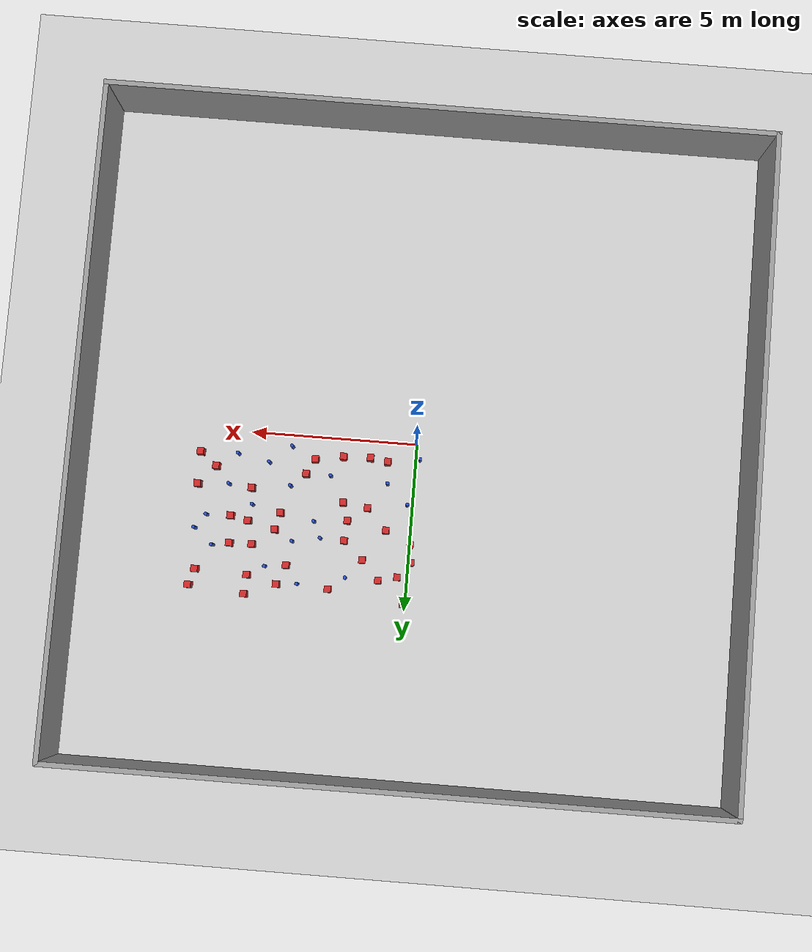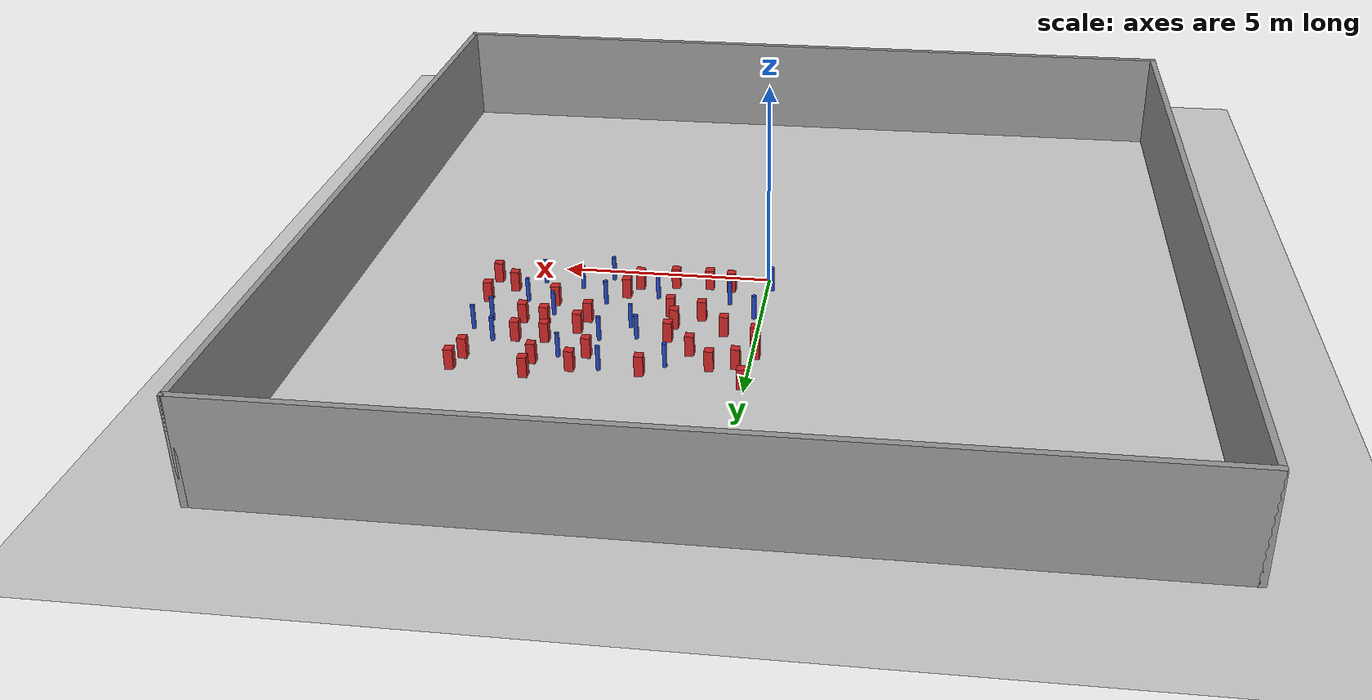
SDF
<sdf version="1.6">
 <world name="default">
  <model name="ground_plane">
   <static>1</static>
   <link name="link">
    <collision name="collision">
     <geometry><plane><normal>0 0 1</normal><size>100 100</size></plane></geometry>
     <surface><friction><ode><mu>100</mu><mu2>50</mu2></ode></friction></surface>
    </collision>
    <visual name="visual">
     <cast_shadows>0</cast_shadows>
     <geometry><plane><normal>0 0 1</normal><size>100 100</size></plane></geometry>
     <material>
      <ambient>1.0 1.0 1.0 1.0</ambient>
      <diffuse>0.8 0.8 0.8 1.0</diffuse>
      <specular>0.01 0.01 0.01 1.000000</specular>
     </material>
    </visual>
   </link>
  </model>
  <model name="20x20_walls">
   <pose>0.044518 0.176112 0 0 -0 0</pose>
   <link name="Wall_1">
    <collision name="Wall_1_Collision">
     <geometry><box><size>20 0.15 2.5</size></box></geometry>
     <pose>0 0 1.25 0 -0 0</pose>
    </collision>
    <visual name="Wall_1_Visual">
     <pose>0 0 1.25 0 -0 0</pose>
     <geometry><box><size>20 0.15 2.5</size></box></geometry>
     <material>
      <script><uri>file://media/materials/scripts/gazebo.material</uri><name>Gazebo/Grey</name></script>
      <ambient>0.976471 0.992157 1 1</ambient>
     </material>
     <meta><layer>0</layer></meta>
    </visual>
    <pose>0 9.925 0 0 -0 0</pose>
   </link>
   <link name="Wall_3">
    <collision name="Wall_3_Collision">
     <geometry><box><size>20 0.15 2.5</size></box></geometry>
     <pose>0 0 1.25 0 -0 0</pose>
    </collision>
    <visual name="Wall_3_Visual">
     <pose>0 0 1.25 0 -0 0</pose>
     <geometry><box><size>20 0.15 2.5</size></box></geometry>
     <material>
      <script><uri>file://media/materials/scripts/gazebo.material</uri><name>Gazebo/Grey</name></script>
      <ambient>0.976471 0.992157 1 1</ambient>
     </material>
     <meta><layer>0</layer></meta>
    </visual>
    <pose>9.925 0 0 0 0 -1.5708</pose>
   </link>
   <link name="Wall_4">
    <collision name="Wall_4_Collision">
     <geometry><box><size>20 0.15 2.5</size></box></geometry>
     <pose>0 0 1.25 0 -0 0</pose>
    </collision>
    <visual name="Wall_4_Visual">
     <pose>0 0 1.25 0 -0 0</pose>
     <geometry><box><size>20 0.15 2.5</size></box></geometry>
     <material>
      <script><uri>file://media/materials/scripts/gazebo.material</uri><name>Gazebo/Grey</name></script>
      <ambient>0.976471 0.992157 1 1</ambient>
     </material>
     <meta><layer>0</layer></meta>
    </visual>
    <pose>0 -9.925 0 0 -0 3.14159</pose>
   </link>
   <link name="Wall_5">
    <collision name="Wall_5_Collision">
     <geometry><box><size>20 0.15 2.5</size></box></geometry>
     <pose>0 0 1.25 0 -0 0</pose>
    </collision>
    <visual name="Wall_5_Visual">
     <pose>0 0 1.25 0 -0 0</pose>
     <geometry><box><size>20 0.15 2.5</size></box></geometry>
     <material>
      <script><uri>file://media/materials/scripts/gazebo.material</uri><name>Gazebo/Grey</name></script>
      <ambient>0.976471 0.992157 1 1</ambient>
     </material>
     <meta><layer>0</layer></meta>
    </visual>
    <pose>-9.925 0 0 0 -0 1.5708</pose>
   </link>
   <static>1</static>
  </model>
  <model name="pole_obstacle0">
   <static>true</static>
   <pose>5.53012005391 1.63645903524 7.38925637345e-09 -8.471706928e-08 1.24976765134e-08 -1.74513093015e-07</pose>
   <link name="link">
    <pose>0 0 0.3 0 -0 0</pose>
    <inertial>
     <mass>1</mass>
     <inertia><ixx>0.145833</ixx><ixy>0</ixy><ixz>0</ixz><iyy>0.145833</iyy><iyz>0</iyz><izz>0.125</izz></inertia>
    </inertial>
    <collision name="collision">
     <geometry><cylinder><radius>0.05</radius><length>.6</length></cylinder></geometry>
    </collision>
    <visual name="visual">
     <geometry><cylinder><radius>0.05</radius><length>.6</length></cylinder></geometry>
     <material>
      <script><name>Gazebo/Blue</name><uri>file://media/materials/scripts/gazebo.material</uri></script>
     </material>
    </visual>
   </link>
  </model>
  <model name="pole_obstacle8">
   <static>true</static>
   <pose>5.87844196095 3.49214916808 7.38925637345e-09 -8.47170692798e-08 1.24976764937e-08 -1.74513093023e-07</pose>
   <link name="link">
    <pose>0 0 0.3 0 -0 0</pose>
    <inertial>
     <mass>1</mass>
     <inertia><ixx>0.145833</ixx><ixy>0</ixy><ixz>0</ixz><iyy>0.145833</iyy><iyz>0</iyz><izz>0.125</izz></inertia>
    </inertial>
    <collision name="collision">
     <geometry><cylinder><radius>0.05</radius><length>.6</length></cylinder></geometry>
    </collision>
    <visual name="visual">
     <geometry><cylinder><radius>0.05</radius><length>.6</length></cylinder></geometry>
     <material>
      <script><name>Gazebo/Blue</name><uri>file://media/materials/scripts/gazebo.material</uri></script>
     </material>
    </visual>
   </link>
  </model>
  <model name="pole_obstacle9">
   <static>true</static>
   <pose>6.12824490941 2.60409271185 7.38925637345e-09 -8.47170692798e-08 1.24976764937e-08 -1.74513093023e-07</pose>
   <link name="link">
    <pose>0 0 0.3 0 -0 0</pose>
    <inertial>
     <mass>1</mass>
     <inertia><ixx>0.145833</ixx><ixy>0</ixy><ixz>0</ixz><iyy>0.145833</iyy><iyz>0</iyz><izz>0.125</izz></inertia>
    </inertial>
    <collision name="collision">
     <geometry><cylinder><radius>0.05</radius><length>.6</length></cylinder></geometry>
    </collision>
    <visual name="visual">
     <geometry><cylinder><radius>0.05</radius><length>.6</length></cylinder></geometry>
     <material>
      <script><name>Gazebo/Blue</name><uri>file://media/materials/scripts/gazebo.material</uri></script>
     </material>
    </visual>
   </link>
  </model>
  <model name="square_post_obstacle11">
   <static>true</static>
   <pose>3.62025959342 3.93356187198 1.91545236811e-07 -7.35059704564e-06 1.12565212e-07 2.39332434364e-05</pose>
   <link name="link">
    <pose>0 0 0.25 0 -0 0</pose>
    <inertial>
     <mass>100</mass>
     <inertia>
      <ixx>0.166667</ixx>
      <ixy>0</ixy>
      <ixz>0</ixz>
      <iyy>0.166667</iyy>
      <iyz>0</iyz>
      <izz>0.166667</izz>
     </inertia>
    </inertial>
    <collision name="collision"><geometry><box><size>.2 .2 .5</size></box></geometry></collision>
    <visual name="visual">
     <geometry><box><size>.2 .2 .5</size></box></geometry>
     <material>
      <script><name>Gazebo/Red</name><uri>file://media/materials/scripts/gazebo.material</uri></script>
     </material>
    </visual>
   </link>
  </model>
  <model name="square_post_obstacle15">
   <static>true</static>
   <pose>2.31926753568 4.54530160243 1.91545236811e-07 -7.35059704564e-06 1.12565212e-07 2.39332434364e-05</pose>
   <link name="link">
    <pose>0 0 0.25 0 -0 0</pose>
    <inertial>
     <mass>100</mass>
     <inertia>
      <ixx>0.166667</ixx>
      <ixy>0</ixy>
      <ixz>0</ixz>
      <iyy>0.166667</iyy>
      <iyz>0</iyz>
      <izz>0.166667</izz>
     </inertia>
    </inertial>
    <collision name="collision"><geometry><box><size>.2 .2 .5</size></box></geometry></collision>
    <visual name="visual">
     <geometry><box><size>.2 .2 .5</size></box></geometry>
     <material>
      <script><name>Gazebo/Red</name><uri>file://media/materials/scripts/gazebo.material</uri></script>
     </material>
    </visual>
   </link>
  </model>
  <model name="pole_obstacle25">
   <static>true</static>
   <pose>0.789988827266 1.26053091735 7.38925637345e-09 -8.47170692799e-08 1.24976765033e-08 -1.7451309302e-07</pose>
   <link name="link">
    <pose>0 0 0.3 0 -0 0</pose>
    <inertial>
     <mass>1</mass>
     <inertia><ixx>0.145833</ixx><ixy>0</ixy><ixz>0</ixz><iyy>0.145833</iyy><iyz>0</iyz><izz>0.125</izz></inertia>
    </inertial>
    <collision name="collision">
     <geometry><cylinder><radius>0.05</radius><length>.6</length></cylinder></geometry>
    </collision>
    <visual name="visual">
     <geometry><cylinder><radius>0.05</radius><length>.6</length></cylinder></geometry>
     <material>
      <script><name>Gazebo/Blue</name><uri>file://media/materials/scripts/gazebo.material</uri></script>
     </material>
    </visual>
   </link>
  </model>
  <model name="pole_obstacle26">
   <static>true</static>
   <pose>3.50037006921 3.20380332675 7.38925637345e-09 -8.47170692798e-08 1.24976764939e-08 -1.74513093025e-07</pose>
   <link name="link">
    <pose>0 0 0.3 0 -0 0</pose>
    <inertial>
     <mass>1</mass>
     <inertia><ixx>0.145833</ixx><ixy>0</ixy><ixz>0</ixz><iyy>0.145833</iyy><iyz>0</iyz><izz>0.125</izz></inertia>
    </inertial>
    <collision name="collision">
     <geometry><cylinder><radius>0.05</radius><length>.6</length></cylinder></geometry>
    </collision>
    <visual name="visual">
     <geometry><cylinder><radius>0.05</radius><length>.6</length></cylinder></geometry>
     <material>
      <script><name>Gazebo/Blue</name><uri>file://media/materials/scripts/gazebo.material</uri></script>
     </material>
    </visual>
   </link>
  </model>
  <model name="square_post_obstacle20">
   <static>true</static>
   <pose>4.05397360778 2.89540539146 1.91545236811e-07 -7.35059704564e-06 1.12565212e-07 2.39332434364e-05</pose>
   <link name="link">
    <pose>0 0 0.25 0 -0 0</pose>
    <inertial>
     <mass>100</mass>
     <inertia>
      <ixx>0.166667</ixx>
      <ixy>0</ixy>
      <ixz>0</ixz>
      <iyy>0.166667</iyy>
      <iyz>0</iyz>
      <izz>0.166667</izz>
     </inertia>
    </inertial>
    <collision name="collision"><geometry><box><size>.2 .2 .5</size></box></geometry></collision>
    <visual name="visual">
     <geometry><box><size>.2 .2 .5</size></box></geometry>
     <material>
      <script><name>Gazebo/Red</name><uri>file://media/materials/scripts/gazebo.material</uri></script>
     </material>
    </visual>
   </link>
  </model>
  <model name="square_post_obstacle23">
   <static>true</static>
   <pose>-0.0284455141677 3.0320366668 1.91545236811e-07 -7.35059704564e-06 1.12565212e-07 2.39332434364e-05</pose>
   <link name="link">
    <pose>0 0 0.25 0 -0 0</pose>
    <inertial>
     <mass>100</mass>
     <inertia>
      <ixx>0.166667</ixx>
      <ixy>0</ixy>
      <ixz>0</ixz>
      <iyy>0.166667</iyy>
      <iyz>0</iyz>
      <izz>0.166667</izz>
     </inertia>
    </inertial>
    <collision name="collision"><geometry><box><size>.2 .2 .5</size></box></geometry></collision>
    <visual name="visual">
     <geometry><box><size>.2 .2 .5</size></box></geometry>
     <material>
      <script><name>Gazebo/Red</name><uri>file://media/materials/scripts/gazebo.material</uri></script>
     </material>
    </visual>
   </link>
  </model>
  <model name="square_post_obstacle29">
   <static>true</static>
   <pose>5.96464632049 1.12228023086 1.91545236811e-07 -7.35059704564e-06 1.12565212e-07 2.39332434364e-05</pose>
   <link name="link">
    <pose>0 0 0.25 0 -0 0</pose>
    <inertial>
     <mass>100</mass>
     <inertia>
      <ixx>0.166667</ixx>
      <ixy>0</ixy>
      <ixz>0</ixz>
      <iyy>0.166667</iyy>
      <iyz>0</iyz>
      <izz>0.166667</izz>
     </inertia>
    </inertial>
    <collision name="collision"><geometry><box><size>.2 .2 .5</size></box></geometry></collision>
    <visual name="visual">
     <geometry><box><size>.2 .2 .5</size></box></geometry>
     <material>
      <script><name>Gazebo/Red</name><uri>file://media/materials/scripts/gazebo.material</uri></script>
     </material>
    </visual>
   </link>
  </model>
  <model name="square_post_obstacle34">
   <static>true</static>
   <pose>1.32930694954 2.03340930226 1.91545236811e-07 -7.35059704564e-06 1.12565212e-07 2.39332434364e-05</pose>
   <link name="link">
    <pose>0 0 0.25 0 -0 0</pose>
    <inertial>
     <mass>100</mass>
     <inertia>
      <ixx>0.166667</ixx>
      <ixy>0</ixy>
      <ixz>0</ixz>
      <iyy>0.166667</iyy>
      <iyz>0</iyz>
      <izz>0.166667</izz>
     </inertia>
    </inertial>
    <collision name="collision"><geometry><box><size>.2 .2 .5</size></box></geometry></collision>
    <visual name="visual">
     <geometry><box><size>.2 .2 .5</size></box></geometry>
     <material>
      <script><name>Gazebo/Red</name><uri>file://media/materials/scripts/gazebo.material</uri></script>
     </material>
    </visual>
   </link>
  </model>
  <model name="pole_obstacle49">
   <static>true</static>
   <pose>-0.131076097864 0.462199059727 7.38925637345e-09 -8.47170692798e-08 1.24976764942e-08 -1.74513093023e-07</pose>
   <link name="link">
    <pose>0 0 0.3 0 -0 0</pose>
    <inertial>
     <mass>1</mass>
     <inertia><ixx>0.145833</ixx><ixy>0</ixy><ixz>0</ixz><iyy>0.145833</iyy><iyz>0</iyz><izz>0.125</izz></inertia>
    </inertial>
    <collision name="collision">
     <geometry><cylinder><radius>0.05</radius><length>.6</length></cylinder></geometry>
    </collision>
    <visual name="visual">
     <geometry><cylinder><radius>0.05</radius><length>.6</length></cylinder></geometry>
     <material>
      <script><name>Gazebo/Blue</name><uri>file://media/materials/scripts/gazebo.material</uri></script>
     </material>
    </visual>
   </link>
  </model>
  <model name="pole_obstacle63">
   <static>true</static>
   <pose>5.33403567424 0.69706182856 7.38925637345e-09 -8.47170692799e-08 1.24976765038e-08 -1.74513093018e-07</pose>
   <link name="link">
    <pose>0 0 0.3 0 -0 0</pose>
    <inertial>
     <mass>1</mass>
     <inertia><ixx>0.145833</ixx><ixy>0</ixy><ixz>0</ixz><iyy>0.145833</iyy><iyz>0</iyz><izz>0.125</izz></inertia>
    </inertial>
    <collision name="collision">
     <geometry><cylinder><radius>0.05</radius><length>.6</length></cylinder></geometry>
    </collision>
    <visual name="visual">
     <geometry><cylinder><radius>0.05</radius><length>.6</length></cylinder></geometry>
     <material>
      <script><name>Gazebo/Blue</name><uri>file://media/materials/scripts/gazebo.material</uri></script>
     </material>
    </visual>
   </link>
  </model>
  <model name="pole_obstacle65">
   <static>true</static>
   <pose>4.78089056195 2.19636407476 7.38925637345e-09 -8.47170692798e-08 1.24976764937e-08 -1.74513093023e-07</pose>
   <link name="link">
    <pose>0 0 0.3 0 -0 0</pose>
    <inertial>
     <mass>1</mass>
     <inertia><ixx>0.145833</ixx><ixy>0</ixy><ixz>0</ixz><iyy>0.145833</iyy><iyz>0</iyz><izz>0.125</izz></inertia>
    </inertial>
    <collision name="collision">
     <geometry><cylinder><radius>0.05</radius><length>.6</length></cylinder></geometry>
    </collision>
    <visual name="visual">
     <geometry><cylinder><radius>0.05</radius><length>.6</length></cylinder></geometry>
     <material>
      <script><name>Gazebo/Blue</name><uri>file://media/materials/scripts/gazebo.material</uri></script>
     </material>
    </visual>
   </link>
  </model>
  <model name="square_post_obstacle58">
   <static>true</static>
   <pose>0.283528307763 4.02789650164 1.91545236811e-07 -7.35059704564e-06 1.12565212e-07 2.39332434364e-05</pose>
   <link name="link">
    <pose>0 0 0.25 0 -0 0</pose>
    <inertial>
     <mass>100</mass>
     <inertia>
      <ixx>0.166667</ixx>
      <ixy>0</ixy>
      <ixz>0</ixz>
      <iyy>0.166667</iyy>
      <iyz>0</iyz>
      <izz>0.166667</izz>
     </inertia>
    </inertial>
    <collision name="collision"><geometry><box><size>.2 .2 .5</size></box></geometry></collision>
    <visual name="visual">
     <geometry><box><size>.2 .2 .5</size></box></geometry>
     <material>
      <script><name>Gazebo/Red</name><uri>file://media/materials/scripts/gazebo.material</uri></script>
     </material>
    </visual>
   </link>
  </model>
  <model name="square_post_obstacle59">
   <static>true</static>
   <pose>6.46766365189 0.726228819228 1.91545236811e-07 -7.35059704564e-06 1.12565212e-07 2.39332434364e-05</pose>
   <link name="link">
    <pose>0 0 0.25 0 -0 0</pose>
    <inertial>
     <mass>100</mass>
     <inertia>
      <ixx>0.166667</ixx>
      <ixy>0</ixy>
      <ixz>0</ixz>
      <iyy>0.166667</iyy>
      <iyz>0</iyz>
      <izz>0.166667</izz>
     </inertia>
    </inertial>
    <collision name="collision"><geometry><box><size>.2 .2 .5</size></box></geometry></collision>
    <visual name="visual">
     <geometry><box><size>.2 .2 .5</size></box></geometry>
     <material>
      <script><name>Gazebo/Red</name><uri>file://media/materials/scripts/gazebo.material</uri></script>
     </material>
    </visual>
   </link>
  </model>
  <model name="square_post_obstacle61">
   <static>true</static>
   <pose>3.25321663703 1.15025917835 1.91545236811e-07 -7.35059704564e-06 1.12565212e-07 2.39332434364e-05</pose>
   <link name="link">
    <pose>0 0 0.25 0 -0 0</pose>
    <inertial>
     <mass>100</mass>
     <inertia>
      <ixx>0.166667</ixx>
      <ixy>0</ixy>
      <ixz>0</ixz>
      <iyy>0.166667</iyy>
      <iyz>0</iyz>
      <izz>0.166667</izz>
     </inertia>
    </inertial>
    <collision name="collision"><geometry><box><size>.2 .2 .5</size></box></geometry></collision>
    <visual name="visual">
     <geometry><box><size>.2 .2 .5</size></box></geometry>
     <material>
      <script><name>Gazebo/Red</name><uri>file://media/materials/scripts/gazebo.material</uri></script>
     </material>
    </visual>
   </link>
  </model>
  <model name="square_post_obstacle65">
   <static>true</static>
   <pose>2.17503144081 0.547751747329 1.91545236811e-07 -7.35059704564e-06 1.12565212e-07 2.39332434364e-05</pose>
   <link name="link">
    <pose>0 0 0.25 0 -0 0</pose>
    <inertial>
     <mass>100</mass>
     <inertia>
      <ixx>0.166667</ixx>
      <ixy>0</ixy>
      <ixz>0</ixz>
      <iyy>0.166667</iyy>
      <iyz>0</iyz>
      <izz>0.166667</izz>
     </inertia>
    </inertial>
    <collision name="collision"><geometry><box><size>.2 .2 .5</size></box></geometry></collision>
    <visual name="visual">
     <geometry><box><size>.2 .2 .5</size></box></geometry>
     <material>
      <script><name>Gazebo/Red</name><uri>file://media/materials/scripts/gazebo.material</uri></script>
     </material>
    </visual>
   </link>
  </model>
  <model name="pole_obstacle82">
   <static>true</static>
   <pose>1.82703863522 4.16357167826 7.38925637345e-09 -8.47170692799e-08 1.24976765033e-08 -1.74513093018e-07</pose>
   <link name="link">
    <pose>0 0 0.3 0 -0 0</pose>
    <inertial>
     <mass>1</mass>
     <inertia><ixx>0.145833</ixx><ixy>0</ixy><ixz>0</ixz><iyy>0.145833</iyy><iyz>0</iyz><izz>0.125</izz></inertia>
    </inertial>
    <collision name="collision">
     <geometry><cylinder><radius>0.05</radius><length>.6</length></cylinder></geometry>
    </collision>
    <visual name="visual">
     <geometry><cylinder><radius>0.05</radius><length>.6</length></cylinder></geometry>
     <material>
      <script><name>Gazebo/Blue</name><uri>file://media/materials/scripts/gazebo.material</uri></script>
     </material>
    </visual>
   </link>
  </model>
  <model name="square_post_obstacle79">
   <static>true</static>
   <pose>6.47118889481 1.69584608744 1.91545236811e-07 -7.35059704564e-06 1.12565212e-07 2.39332434364e-05</pose>
   <link name="link">
    <pose>0 0 0.25 0 -0 0</pose>
    <inertial>
     <mass>100</mass>
     <inertia>
      <ixx>0.166667</ixx>
      <ixy>0</ixy>
      <ixz>0</ixz>
      <iyy>0.166667</iyy>
      <iyz>0</iyz>
      <izz>0.166667</izz>
     </inertia>
    </inertial>
    <collision name="collision"><geometry><box><size>.2 .2 .5</size></box></geometry></collision>
    <visual name="visual">
     <geometry><box><size>.2 .2 .5</size></box></geometry>
     <material>
      <script><name>Gazebo/Red</name><uri>file://media/materials/scripts/gazebo.material</uri></script>
     </material>
    </visual>
   </link>
  </model>
  <model name="square_post_obstacle83">
   <static>true</static>
   <pose>5.40421278945 2.57895310141 1.91545236811e-07 -7.35059704564e-06 1.12565212e-07 2.39332434364e-05</pose>
   <link name="link">
    <pose>0 0 0.25 0 -0 0</pose>
    <inertial>
     <mass>100</mass>
     <inertia>
      <ixx>0.166667</ixx>
      <ixy>0</ixy>
      <ixz>0</ixz>
      <iyy>0.166667</iyy>
      <iyz>0</iyz>
      <izz>0.166667</izz>
     </inertia>
    </inertial>
    <collision name="collision"><geometry><box><size>.2 .2 .5</size></box></geometry></collision>
    <visual name="visual">
     <geometry><box><size>.2 .2 .5</size></box></geometry>
     <material>
      <script><name>Gazebo/Red</name><uri>file://media/materials/scripts/gazebo.material</uri></script>
     </material>
    </visual>
   </link>
  </model>
  <model name="pole_obstacle96">
   <static>true</static>
   <pose>0.14579906467 1.85541924025 7.38925637345e-09 -8.47170692799e-08 1.24976765106e-08 -1.74513093015e-07</pose>
   <link name="link">
    <pose>0 0 0.3 0 -0 0</pose>
    <inertial>
     <mass>1</mass>
     <inertia><ixx>0.145833</ixx><ixy>0</ixy><ixz>0</ixz><iyy>0.145833</iyy><iyz>0</iyz><izz>0.125</izz></inertia>
    </inertial>
    <collision name="collision">
     <geometry><cylinder><radius>0.05</radius><length>.6</length></cylinder></geometry>
    </collision>
    <visual name="visual">
     <geometry><cylinder><radius>0.05</radius><length>.6</length></cylinder></geometry>
     <material>
      <script><name>Gazebo/Blue</name><uri>file://media/materials/scripts/gazebo.material</uri></script>
     </material>
    </visual>
   </link>
  </model>
  <model name="square_post_obstacle95">
   <static>true</static>
   <pose>-0.0939607286031 3.56363407375 1.91545236811e-07 -7.35059704564e-06 1.12565212e-07 2.39332434364e-05</pose>
   <link name="link">
    <pose>0 0 0.25 0 -0 0</pose>
    <inertial>
     <mass>100</mass>
     <inertia>
      <ixx>0.166667</ixx>
      <ixy>0</ixy>
      <ixz>0</ixz>
      <iyy>0.166667</iyy>
      <iyz>0</iyz>
      <izz>0.166667</izz>
     </inertia>
    </inertial>
    <collision name="collision"><geometry><box><size>.2 .2 .5</size></box></geometry></collision>
    <visual name="visual">
     <geometry><box><size>.2 .2 .5</size></box></geometry>
     <material>
      <script><name>Gazebo/Red</name><uri>file://media/materials/scripts/gazebo.material</uri></script>
     </material>
    </visual>
   </link>
  </model>
  <model name="pole_obstacle103">
   <static>true</static>
   <pose>4.24769122446 4.01011761105 7.38925637345e-09 -8.47170692797e-08 1.24976764805e-08 -1.74513093031e-07</pose>
   <link name="link">
    <pose>0 0 0.3 0 -0 0</pose>
    <inertial>
     <mass>1</mass>
     <inertia><ixx>0.145833</ixx><ixy>0</ixy><ixz>0</ixz><iyy>0.145833</iyy><iyz>0</iyz><izz>0.125</izz></inertia>
    </inertial>
    <collision name="collision">
     <geometry><cylinder><radius>0.05</radius><length>.6</length></cylinder></geometry>
    </collision>
    <visual name="visual">
     <geometry><cylinder><radius>0.05</radius><length>.6</length></cylinder></geometry>
     <material>
      <script><name>Gazebo/Blue</name><uri>file://media/materials/scripts/gazebo.material</uri></script>
     </material>
    </visual>
   </link>
  </model>
  <model name="square_post_obstacle99">
   <static>true</static>
   <pose>1.36606449897 3.59522073881 1.91545236811e-07 -7.35059704564e-06 1.12565212e-07 2.39332434364e-05</pose>
   <link name="link">
    <pose>0 0 0.25 0 -0 0</pose>
    <inertial>
     <mass>100</mass>
     <inertia>
      <ixx>0.166667</ixx>
      <ixy>0</ixy>
      <ixz>0</ixz>
      <iyy>0.166667</iyy>
      <iyz>0</iyz>
      <izz>0.166667</izz>
     </inertia>
    </inertial>
    <collision name="collision"><geometry><box><size>.2 .2 .5</size></box></geometry></collision>
    <visual name="visual">
     <geometry><box><size>.2 .2 .5</size></box></geometry>
     <material>
      <script><name>Gazebo/Red</name><uri>file://media/materials/scripts/gazebo.material</uri></script>
     </material>
    </visual>
   </link>
  </model>
  <model name="pole_obstacle107">
   <static>true</static>
   <pose>2.50792364967 1.15610359595 7.38925637345e-09 -8.471706928e-08 1.24976765152e-08 -1.74513093012e-07</pose>
   <link name="link">
    <pose>0 0 0.3 0 -0 0</pose>
    <inertial>
     <mass>1</mass>
     <inertia><ixx>0.145833</ixx><ixy>0</ixy><ixz>0</ixz><iyy>0.145833</iyy><iyz>0</iyz><izz>0.125</izz></inertia>
    </inertial>
    <collision name="collision">
     <geometry><cylinder><radius>0.05</radius><length>.6</length></cylinder></geometry>
    </collision>
    <visual name="visual">
     <geometry><cylinder><radius>0.05</radius><length>.6</length></cylinder></geometry>
     <material>
      <script><name>Gazebo/Blue</name><uri>file://media/materials/scripts/gazebo.material</uri></script>
     </material>
    </visual>
   </link>
  </model>
  <model name="pole_obstacle112">
   <static>true</static>
   <pose>4.37701860968 0.886440968492 7.38925637345e-09 -8.47170692799e-08 1.24976765038e-08 -1.74513093018e-07</pose>
   <link name="link">
    <pose>0 0 0.3 0 -0 0</pose>
    <inertial>
     <mass>1</mass>
     <inertia><ixx>0.145833</ixx><ixy>0</ixy><ixz>0</ixz><iyy>0.145833</iyy><iyz>0</iyz><izz>0.125</izz></inertia>
    </inertial>
    <collision name="collision">
     <geometry><cylinder><radius>0.05</radius><length>.6</length></cylinder></geometry>
    </collision>
    <visual name="visual">
     <geometry><cylinder><radius>0.05</radius><length>.6</length></cylinder></geometry>
     <material>
      <script><name>Gazebo/Blue</name><uri>file://media/materials/scripts/gazebo.material</uri></script>
     </material>
    </visual>
   </link>
  </model>
  <model name="square_post_obstacle120">
   <static>true</static>
   <pose>1.90366006837 2.46077081808 1.91545236811e-07 -7.35059704564e-06 1.12565212e-07 2.39332434364e-05</pose>
   <link name="link">
    <pose>0 0 0.25 0 -0 0</pose>
    <inertial>
     <mass>100</mass>
     <inertia>
      <ixx>0.166667</ixx>
      <ixy>0</ixy>
      <ixz>0</ixz>
      <iyy>0.166667</iyy>
      <iyz>0</iyz>
      <izz>0.166667</izz>
     </inertia>
    </inertial>
    <collision name="collision"><geometry><box><size>.2 .2 .5</size></box></geometry></collision>
    <visual name="visual">
     <geometry><box><size>.2 .2 .5</size></box></geometry>
     <material>
      <script><name>Gazebo/Red</name><uri>file://media/materials/scripts/gazebo.material</uri></script>
     </material>
    </visual>
   </link>
  </model>
  <model name="square_post_obstacle136">
   <static>true</static>
   <pose>0.730072804067 2.66133700487 1.91545236811e-07 -7.35059704564e-06 1.12565212e-07 2.39332434364e-05</pose>
   <link name="link">
    <pose>0 0 0.25 0 -0 0</pose>
    <inertial>
     <mass>100</mass>
     <inertia>
      <ixx>0.166667</ixx>
      <ixy>0</ixy>
      <ixz>0</ixz>
      <iyy>0.166667</iyy>
      <iyz>0</iyz>
      <izz>0.166667</izz>
     </inertia>
    </inertial>
    <collision name="collision"><geometry><box><size>.2 .2 .5</size></box></geometry></collision>
    <visual name="visual">
     <geometry><box><size>.2 .2 .5</size></box></geometry>
     <material>
      <script><name>Gazebo/Red</name><uri>file://media/materials/scripts/gazebo.material</uri></script>
     </material>
    </visual>
   </link>
  </model>
  <model name="pole_obstacle151">
   <static>true</static>
   <pose>3.24488344558 4.46098988382 7.38925637345e-09 -8.47170692798e-08 1.24976765033e-08 -1.74513093019e-07</pose>
   <link name="link">
    <pose>0 0 0.3 0 -0 0</pose>
    <inertial>
     <mass>1</mass>
     <inertia><ixx>0.145833</ixx><ixy>0</ixy><ixz>0</ixz><iyy>0.145833</iyy><iyz>0</iyz><izz>0.125</izz></inertia>
    </inertial>
    <collision name="collision">
     <geometry><cylinder><radius>0.05</radius><length>.6</length></cylinder></geometry>
    </collision>
    <visual name="visual">
     <geometry><cylinder><radius>0.05</radius><length>.6</length></cylinder></geometry>
     <material>
      <script><name>Gazebo/Blue</name><uri>file://media/materials/scripts/gazebo.material</uri></script>
     </material>
    </visual>
   </link>
  </model>
  <model name="square_post_obstacle149">
   <static>true</static>
   <pose>4.84701870925 1.69863162646 1.91545236811e-07 -7.35059704564e-06 1.12565212e-07 2.39332434364e-05</pose>
   <link name="link">
    <pose>0 0 0.25 0 -0 0</pose>
    <inertial>
     <mass>100</mass>
     <inertia>
      <ixx>0.166667</ixx>
      <ixy>0</ixy>
      <ixz>0</ixz>
      <iyy>0.166667</iyy>
      <iyz>0</iyz>
      <izz>0.166667</izz>
     </inertia>
    </inertial>
    <collision name="collision"><geometry><box><size>.2 .2 .5</size></box></geometry></collision>
    <visual name="visual">
     <geometry><box><size>.2 .2 .5</size></box></geometry>
     <material>
      <script><name>Gazebo/Red</name><uri>file://media/materials/scripts/gazebo.material</uri></script>
     </material>
    </visual>
   </link>
  </model>
  <model name="square_post_obstacle152">
   <static>true</static>
   <pose>5.36925841238 3.39895669184 1.91545236811e-07 -7.35059704564e-06 1.12565212e-07 2.39332434364e-05</pose>
   <link name="link">
    <pose>0 0 0.25 0 -0 0</pose>
    <inertial>
     <mass>100</mass>
     <inertia>
      <ixx>0.166667</ixx>
      <ixy>0</ixy>
      <ixz>0</ixz>
      <iyy>0.166667</iyy>
      <iyz>0</iyz>
      <izz>0.166667</izz>
     </inertia>
    </inertial>
    <collision name="collision"><geometry><box><size>.2 .2 .5</size></box></geometry></collision>
    <visual name="visual">
     <geometry><box><size>.2 .2 .5</size></box></geometry>
     <material>
      <script><name>Gazebo/Red</name><uri>file://media/materials/scripts/gazebo.material</uri></script>
     </material>
    </visual>
   </link>
  </model>
  <model name="square_post_obstacle154">
   <static>true</static>
   <pose>4.80556179169 4.8775813412 1.91545236811e-07 -7.35059704564e-06 1.12565212e-07 2.39332434364e-05</pose>
   <link name="link">
    <pose>0 0 0.25 0 -0 0</pose>
    <inertial>
     <mass>100</mass>
     <inertia>
      <ixx>0.166667</ixx>
      <ixy>0</ixy>
      <ixz>0</ixz>
      <iyy>0.166667</iyy>
      <iyz>0</iyz>
      <izz>0.166667</izz>
     </inertia>
    </inertial>
    <collision name="collision"><geometry><box><size>.2 .2 .5</size></box></geometry></collision>
    <visual name="visual">
     <geometry><box><size>.2 .2 .5</size></box></geometry>
     <material>
      <script><name>Gazebo/Red</name><uri>file://media/materials/scripts/gazebo.material</uri></script>
     </material>
    </visual>
   </link>
  </model>
  <model name="square_post_obstacle158">
   <static>true</static>
   <pose>0.0483814465579 4.82391852491 1.91545236811e-07 -7.35059704564e-06 1.12565212e-07 2.39332434364e-05</pose>
   <link name="link">
    <pose>0 0 0.25 0 -0 0</pose>
    <inertial>
     <mass>100</mass>
     <inertia>
      <ixx>0.166667</ixx>
      <ixy>0</ixy>
      <ixz>0</ixz>
      <iyy>0.166667</iyy>
      <iyz>0</iyz>
      <izz>0.166667</izz>
     </inertia>
    </inertial>
    <collision name="collision"><geometry><box><size>.2 .2 .5</size></box></geometry></collision>
    <visual name="visual">
     <geometry><box><size>.2 .2 .5</size></box></geometry>
     <material>
      <script><name>Gazebo/Red</name><uri>file://media/materials/scripts/gazebo.material</uri></script>
     </material>
    </visual>
   </link>
  </model>
  <model name="square_post_obstacle165">
   <static>true</static>
   <pose>4.69690421018 3.38154626771 1.91545236811e-07 -7.35059704564e-06 1.12565212e-07 2.39332434364e-05</pose>
   <link name="link">
    <pose>0 0 0.25 0 -0 0</pose>
    <inertial>
     <mass>100</mass>
     <inertia>
      <ixx>0.166667</ixx>
      <ixy>0</ixy>
      <ixz>0</ixz>
      <iyy>0.166667</iyy>
      <iyz>0</iyz>
      <izz>0.166667</izz>
     </inertia>
    </inertial>
    <collision name="collision"><geometry><box><size>.2 .2 .5</size></box></geometry></collision>
    <visual name="visual">
     <geometry><box><size>.2 .2 .5</size></box></geometry>
     <material>
      <script><name>Gazebo/Red</name><uri>file://media/materials/scripts/gazebo.material</uri></script>
     </material>
    </visual>
   </link>
  </model>
  <model name="square_post_obstacle167">
   <static>true</static>
   <pose>0.836168058869 0.599513132058 1.91545236811e-07 -7.35059704564e-06 1.12565212e-07 2.39332434364e-05</pose>
   <link name="link">
    <pose>0 0 0.25 0 -0 0</pose>
    <inertial>
     <mass>100</mass>
     <inertia>
      <ixx>0.166667</ixx>
      <ixy>0</ixy>
      <ixz>0</ixz>
      <iyy>0.166667</iyy>
      <iyz>0</iyz>
      <izz>0.166667</izz>
     </inertia>
    </inertial>
    <collision name="collision"><geometry><box><size>.2 .2 .5</size></box></geometry></collision>
    <visual name="visual">
     <geometry><box><size>.2 .2 .5</size></box></geometry>
     <material>
      <script><name>Gazebo/Red</name><uri>file://media/materials/scripts/gazebo.material</uri></script>
     </material>
    </visual>
   </link>
  </model>
  <model name="pole_obstacle169">
   <static>true</static>
   <pose>3.72648169822 0.362263598966 7.38925637345e-09 -8.471706928e-08 1.24976765172e-08 -1.74513093013e-07</pose>
   <link name="link">
    <pose>0 0 0.3 0 -0 0</pose>
    <inertial>
     <mass>1</mass>
     <inertia><ixx>0.145833</ixx><ixy>0</ixy><ixz>0</ixz><iyy>0.145833</iyy><iyz>0</iyz><izz>0.125</izz></inertia>
    </inertial>
    <collision name="collision">
     <geometry><cylinder><radius>0.05</radius><length>.6</length></cylinder></geometry>
    </collision>
    <visual name="visual">
     <geometry><cylinder><radius>0.05</radius><length>.6</length></cylinder></geometry>
     <material>
      <script><name>Gazebo/Blue</name><uri>file://media/materials/scripts/gazebo.material</uri></script>
     </material>
    </visual>
   </link>
  </model>
  <model name="square_post_obstacle171">
   <static>true</static>
   <pose>4.7661979493 4.30412244177 1.91545236811e-07 -7.35059704564e-06 1.12565212e-07 2.39332434364e-05</pose>
   <link name="link">
    <pose>0 0 0.25 0 -0 0</pose>
    <inertial>
     <mass>100</mass>
     <inertia>
      <ixx>0.166667</ixx>
      <ixy>0</ixy>
      <ixz>0</ixz>
      <iyy>0.166667</iyy>
      <iyz>0</iyz>
      <izz>0.166667</izz>
     </inertia>
    </inertial>
    <collision name="collision"><geometry><box><size>.2 .2 .5</size></box></geometry></collision>
    <visual name="visual">
     <geometry><box><size>.2 .2 .5</size></box></geometry>
     <material>
      <script><name>Gazebo/Red</name><uri>file://media/materials/scripts/gazebo.material</uri></script>
     </material>
    </visual>
   </link>
  </model>
  <model name="pole_obstacle174">
   <static>true</static>
   <pose>2.6704647458 3.04761298267 7.38925637345e-09 -8.47170692798e-08 1.24976764939e-08 -1.74513093025e-07</pose>
   <link name="link">
    <pose>0 0 0.3 0 -0 0</pose>
    <inertial>
     <mass>1</mass>
     <inertia><ixx>0.145833</ixx><ixy>0</ixy><ixz>0</ixz><iyy>0.145833</iyy><iyz>0</iyz><izz>0.125</izz></inertia>
    </inertial>
    <collision name="collision">
     <geometry><cylinder><radius>0.05</radius><length>.6</length></cylinder></geometry>
    </collision>
    <visual name="visual">
     <geometry><cylinder><radius>0.05</radius><length>.6</length></cylinder></geometry>
     <material>
      <script><name>Gazebo/Blue</name><uri>file://media/materials/scripts/gazebo.material</uri></script>
     </material>
    </visual>
   </link>
  </model>
  <model name="square_post_obstacle173">
   <static>true</static>
   <pose>2.07495734918 1.92567187032 1.91545236811e-07 -7.35059704564e-06 1.12565212e-07 2.39332434364e-05</pose>
   <link name="link">
    <pose>0 0 0.25 0 -0 0</pose>
    <inertial>
     <mass>100</mass>
     <inertia>
      <ixx>0.166667</ixx>
      <ixy>0</ixy>
      <ixz>0</ixz>
      <iyy>0.166667</iyy>
      <iyz>0</iyz>
      <izz>0.166667</izz>
     </inertia>
    </inertial>
    <collision name="collision"><geometry><box><size>.2 .2 .5</size></box></geometry></collision>
    <visual name="visual">
     <geometry><box><size>.2 .2 .5</size></box></geometry>
     <material>
      <script><name>Gazebo/Red</name><uri>file://media/materials/scripts/gazebo.material</uri></script>
     </material>
    </visual>
   </link>
  </model>
  <model name="square_post_obstacle174">
   <static>true</static>
   <pose>1.95049129233 3.06329536897 1.91545236811e-07 -7.35059704564e-06 1.12565212e-07 2.39332434364e-05</pose>
   <link name="link">
    <pose>0 0 0.25 0 -0 0</pose>
    <inertial>
     <mass>100</mass>
     <inertia>
      <ixx>0.166667</ixx>
      <ixy>0</ixy>
      <ixz>0</ixz>
      <iyy>0.166667</iyy>
      <iyz>0</iyz>
      <izz>0.166667</izz>
     </inertia>
    </inertial>
    <collision name="collision"><geometry><box><size>.2 .2 .5</size></box></geometry></collision>
    <visual name="visual">
     <geometry><box><size>.2 .2 .5</size></box></geometry>
     <material>
      <script><name>Gazebo/Red</name><uri>file://media/materials/scripts/gazebo.material</uri></script>
     </material>
    </visual>
   </link>
  </model>
  <model name="square_post_obstacle180">
   <static>true</static>
   <pose>3.86588585853 4.51462761689 1.91545236811e-07 -7.35059704564e-06 1.12565212e-07 2.39332434364e-05</pose>
   <link name="link">
    <pose>0 0 0.25 0 -0 0</pose>
    <inertial>
     <mass>100</mass>
     <inertia>
      <ixx>0.166667</ixx>
      <ixy>0</ixy>
      <ixz>0</ixz>
      <iyy>0.166667</iyy>
      <iyz>0</iyz>
      <izz>0.166667</izz>
     </inertia>
    </inertial>
    <collision name="collision"><geometry><box><size>.2 .2 .5</size></box></geometry></collision>
    <visual name="visual">
     <geometry><box><size>.2 .2 .5</size></box></geometry>
     <material>
      <script><name>Gazebo/Red</name><uri>file://media/materials/scripts/gazebo.material</uri></script>
     </material>
    </visual>
   </link>
  </model>
  <model name="pole_obstacle184">
   <static>true</static>
   <pose>2.89463565531 2.56387083551 7.38925637345e-09 -8.47170692798e-08 1.24976764939e-08 -1.74513093025e-07</pose>
   <link name="link">
    <pose>0 0 0.3 0 -0 0</pose>
    <inertial>
     <mass>1</mass>
     <inertia><ixx>0.145833</ixx><ixy>0</ixy><ixz>0</ixz><iyy>0.145833</iyy><iyz>0</iyz><izz>0.125</izz></inertia>
    </inertial>
    <collision name="collision">
     <geometry><cylinder><radius>0.05</radius><length>.6</length></cylinder></geometry>
    </collision>
    <visual name="visual">
     <geometry><cylinder><radius>0.05</radius><length>.6</length></cylinder></geometry>
     <material>
      <script><name>Gazebo/Blue</name><uri>file://media/materials/scripts/gazebo.material</uri></script>
     </material>
    </visual>
   </link>
  </model>
  <model name="square_post_obstacle184">
   <static>true</static>
   <pose>3.92350721509 2.38137709221 1.91545236811e-07 -7.35059704564e-06 1.12565212e-07 2.39332434364e-05</pose>
   <link name="link">
    <pose>0 0 0.25 0 -0 0</pose>
    <inertial>
     <mass>100</mass>
     <inertia>
      <ixx>0.166667</ixx>
      <ixy>0</ixy>
      <ixz>0</ixz>
      <iyy>0.166667</iyy>
      <iyz>0</iyz>
      <izz>0.166667</izz>
     </inertia>
    </inertial>
    <collision name="collision"><geometry><box><size>.2 .2 .5</size></box></geometry></collision>
    <visual name="visual">
     <geometry><box><size>.2 .2 .5</size></box></geometry>
     <material>
      <script><name>Gazebo/Red</name><uri>file://media/materials/scripts/gazebo.material</uri></script>
     </material>
    </visual>
   </link>
  </model>
  <model name="square_post_obstacle185">
   <static>true</static>
   <pose>0.846196945148 4.16904927998 1.91545236811e-07 -7.35059704564e-06 1.12565212e-07 2.39332434364e-05</pose>
   <link name="link">
    <pose>0 0 0.25 0 -0 0</pose>
    <inertial>
     <mass>100</mass>
     <inertia>
      <ixx>0.166667</ixx>
      <ixy>0</ixy>
      <ixz>0</ixz>
      <iyy>0.166667</iyy>
      <iyz>0</iyz>
      <izz>0.166667</izz>
     </inertia>
    </inertial>
    <collision name="collision"><geometry><box><size>.2 .2 .5</size></box></geometry></collision>
    <visual name="visual">
     <geometry><box><size>.2 .2 .5</size></box></geometry>
     <material>
      <script><name>Gazebo/Red</name><uri>file://media/materials/scripts/gazebo.material</uri></script>
     </material>
    </visual>
   </link>
  </model>
  <model name="square_post_obstacle193">
   <static>true</static>
   <pose>6.32797681728 4.24768877481 1.91545236811e-07 -7.35059704564e-06 1.12565212e-07 2.39332434364e-05</pose>
   <link name="link">
    <pose>0 0 0.25 0 -0 0</pose>
    <inertial>
     <mass>100</mass>
     <inertia>
      <ixx>0.166667</ixx>
      <ixy>0</ixy>
      <ixz>0</ixz>
      <iyy>0.166667</iyy>
      <iyz>0</iyz>
      <izz>0.166667</izz>
     </inertia>
    </inertial>
    <collision name="collision"><geometry><box><size>.2 .2 .5</size></box></geometry></collision>
    <visual name="visual">
     <geometry><box><size>.2 .2 .5</size></box></geometry>
     <material>
      <script><name>Gazebo/Red</name><uri>file://media/materials/scripts/gazebo.material</uri></script>
     </material>
    </visual>
   </link>
  </model>
  <model name="square_post_obstacle196">
   <static>true</static>
   <pose>4.87364597112 2.69052529856 1.91545236811e-07 -7.35059704564e-06 1.12565212e-07 2.39332434364e-05</pose>
   <link name="link">
    <pose>0 0 0.25 0 -0 0</pose>
    <inertial>
     <mass>100</mass>
     <inertia>
      <ixx>0.166667</ixx>
      <ixy>0</ixy>
      <ixz>0</ixz>
      <iyy>0.166667</iyy>
      <iyz>0</iyz>
      <izz>0.166667</izz>
     </inertia>
    </inertial>
    <collision name="collision"><geometry><box><size>.2 .2 .5</size></box></geometry></collision>
    <visual name="visual">
     <geometry><box><size>.2 .2 .5</size></box></geometry>
     <material>
      <script><name>Gazebo/Red</name><uri>file://media/materials/scripts/gazebo.material</uri></script>
     </material>
    </visual>
   </link>
  </model>
  <model name="square_post_obstacle198">
   <static>true</static>
   <pose>3.01051749543 0.69122803072 1.91545236811e-07 -7.35059704564e-06 1.12565212e-07 2.39332434364e-05</pose>
   <link name="link">
    <pose>0 0 0.25 0 -0 0</pose>
    <inertial>
     <mass>100</mass>
     <inertia>
      <ixx>0.166667</ixx>
      <ixy>0</ixy>
      <ixz>0</ixz>
      <iyy>0.166667</iyy>
      <iyz>0</iyz>
      <izz>0.166667</izz>
     </inertia>
    </inertial>
    <collision name="collision"><geometry><box><size>.2 .2 .5</size></box></geometry></collision>
    <visual name="visual">
     <geometry><box><size>.2 .2 .5</size></box></geometry>
     <material>
      <script><name>Gazebo/Red</name><uri>file://media/materials/scripts/gazebo.material</uri></script>
     </material>
    </visual>
   </link>
  </model>
  <model name="pole_obstacle204">
   <static>true</static>
   <pose>6.44839108272 3.02051237898 7.38925637345e-09 -8.47170692798e-08 1.24976764937e-08 -1.74513093023e-07</pose>
   <link name="link">
    <pose>0 0 0.3 0 -0 0</pose>
    <inertial>
     <mass>1</mass>
     <inertia><ixx>0.145833</ixx><ixy>0</ixy><ixz>0</ixz><iyy>0.145833</iyy><iyz>0</iyz><izz>0.125</izz></inertia>
    </inertial>
    <collision name="collision">
     <geometry><cylinder><radius>0.05</radius><length>.6</length></cylinder></geometry>
    </collision>
    <visual name="visual">
     <geometry><cylinder><radius>0.05</radius><length>.6</length></cylinder></geometry>
     <material>
      <script><name>Gazebo/Blue</name><uri>file://media/materials/scripts/gazebo.material</uri></script>
     </material>
    </visual>
   </link>
  </model>
  <model name="pole_obstacle207">
   <static>true</static>
   <pose>3.68467582857 1.55166338702 7.38925637345e-09 -8.471706928e-08 1.24976765152e-08 -1.74513093012e-07</pose>
   <link name="link">
    <pose>0 0 0.3 0 -0 0</pose>
    <inertial>
     <mass>1</mass>
     <inertia><ixx>0.145833</ixx><ixy>0</ixy><ixz>0</ixz><iyy>0.145833</iyy><iyz>0</iyz><izz>0.125</izz></inertia>
    </inertial>
    <collision name="collision">
     <geometry><cylinder><radius>0.05</radius><length>.6</length></cylinder></geometry>
    </collision>
    <visual name="visual">
     <geometry><cylinder><radius>0.05</radius><length>.6</length></cylinder></geometry>
     <material>
      <script><name>Gazebo/Blue</name><uri>file://media/materials/scripts/gazebo.material</uri></script>
     </material>
    </visual>
   </link>
  </model>
  <model name="square_post_obstacle213">
   <static>true</static>
   <pose>1.36410579436 0.521515231226 1.91545236811e-07 -7.35059704564e-06 1.12565212e-07 2.39332434364e-05</pose>
   <link name="link">
    <pose>0 0 0.25 0 -0 0</pose>
    <inertial>
     <mass>100</mass>
     <inertia>
      <ixx>0.166667</ixx>
      <ixy>0</ixy>
      <ixz>0</ixz>
      <iyy>0.166667</iyy>
      <iyz>0</iyz>
      <izz>0.166667</izz>
     </inertia>
    </inertial>
    <collision name="collision"><geometry><box><size>.2 .2 .5</size></box></geometry></collision>
    <visual name="visual">
     <geometry><box><size>.2 .2 .5</size></box></geometry>
     <material>
      <script><name>Gazebo/Red</name><uri>file://media/materials/scripts/gazebo.material</uri></script>
     </material>
    </visual>
   </link>
  </model>
  <model name="square_post_obstacle214">
   <static>true</static>
   <pose>6.48326744433 4.73197226593 1.91545236811e-07 -7.35059704564e-06 1.12565212e-07 2.39332434364e-05</pose>
   <link name="link">
    <pose>0 0 0.25 0 -0 0</pose>
    <inertial>
     <mass>100</mass>
     <inertia>
      <ixx>0.166667</ixx>
      <ixy>0</ixy>
      <ixz>0</ixz>
      <iyy>0.166667</iyy>
      <iyz>0</iyz>
      <izz>0.166667</izz>
     </inertia>
    </inertial>
    <collision name="collision"><geometry><box><size>.2 .2 .5</size></box></geometry></collision>
    <visual name="visual">
     <geometry><box><size>.2 .2 .5</size></box></geometry>
     <material>
      <script><name>Gazebo/Red</name><uri>file://media/materials/scripts/gazebo.material</uri></script>
     </material>
    </visual>
   </link>
  </model>
 </world>
</sdf>
